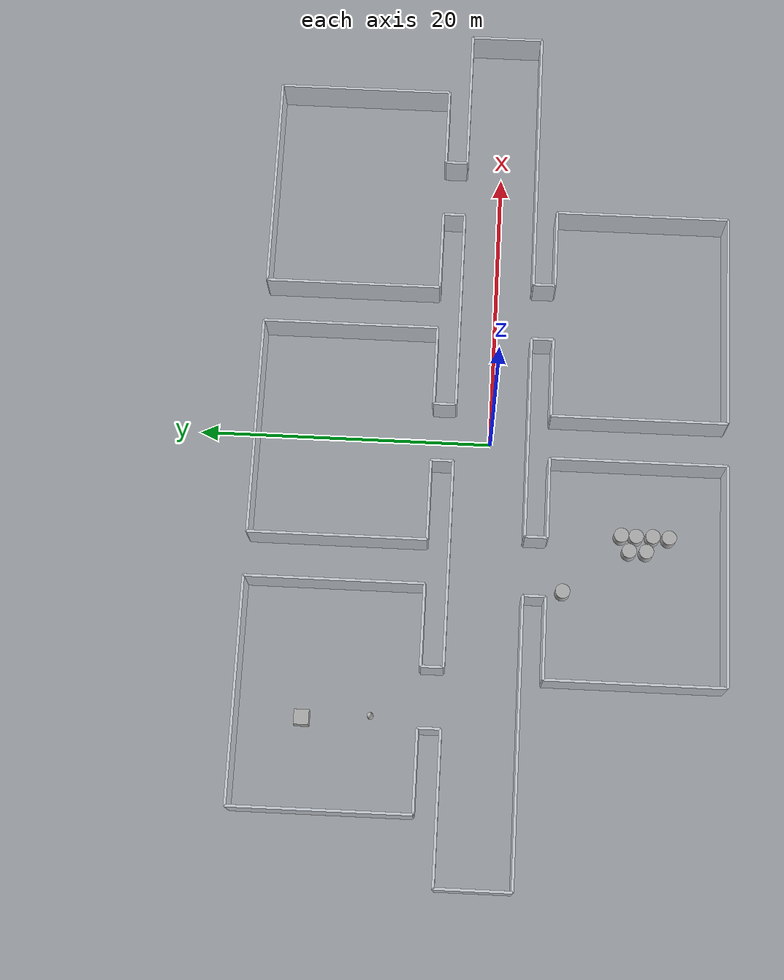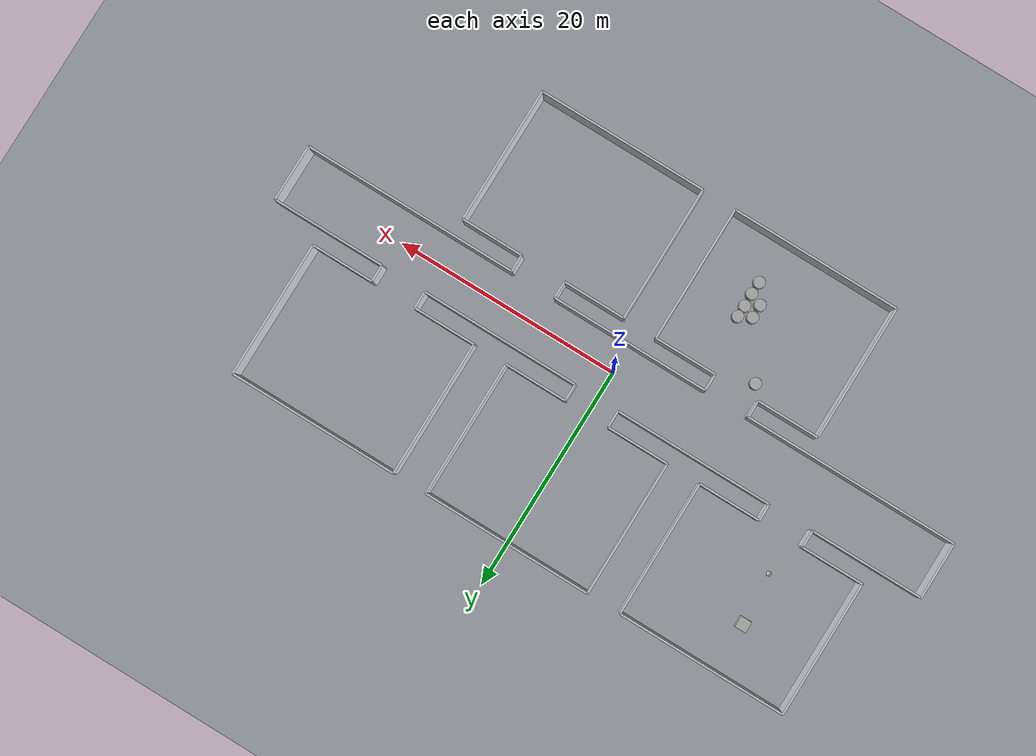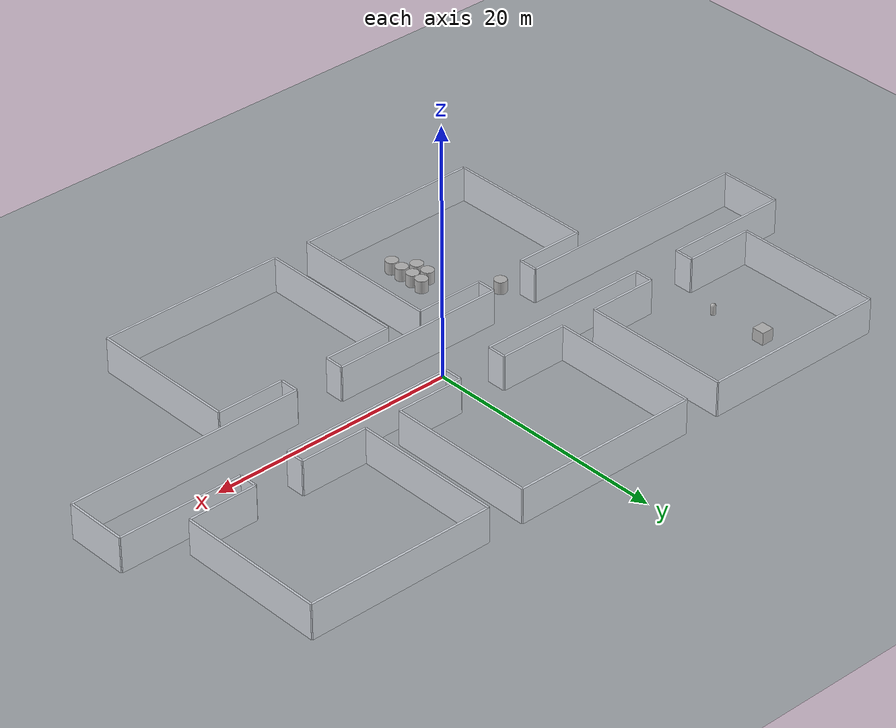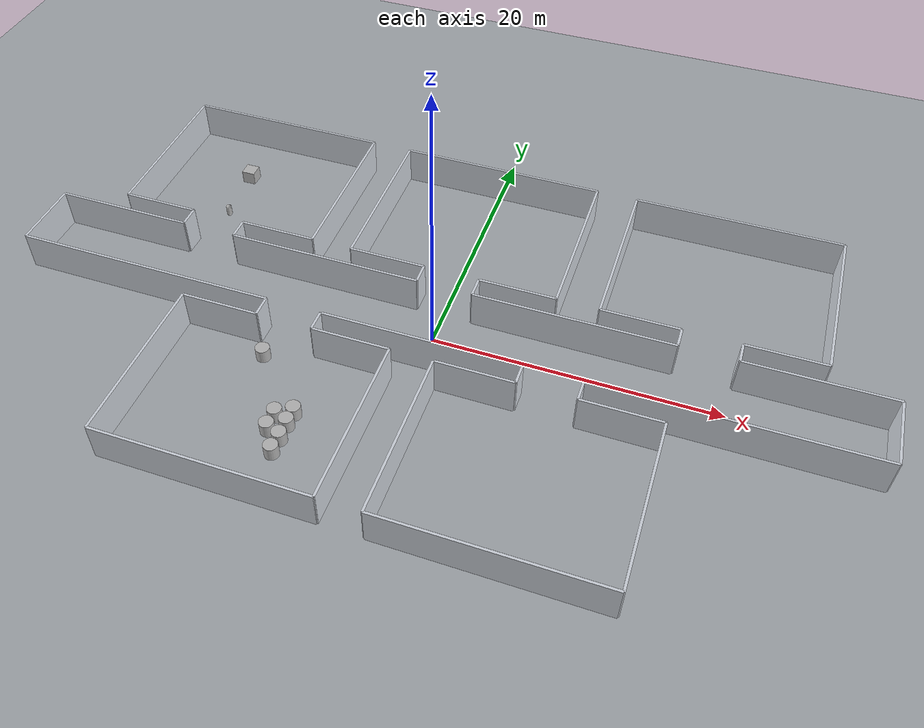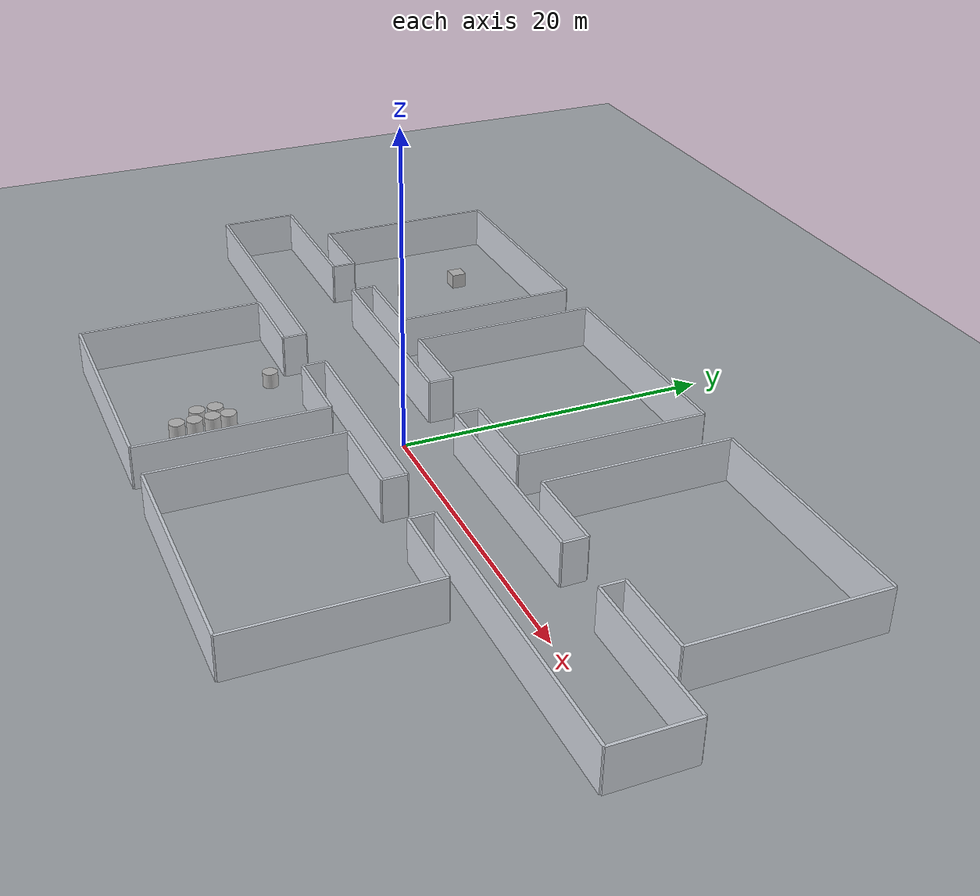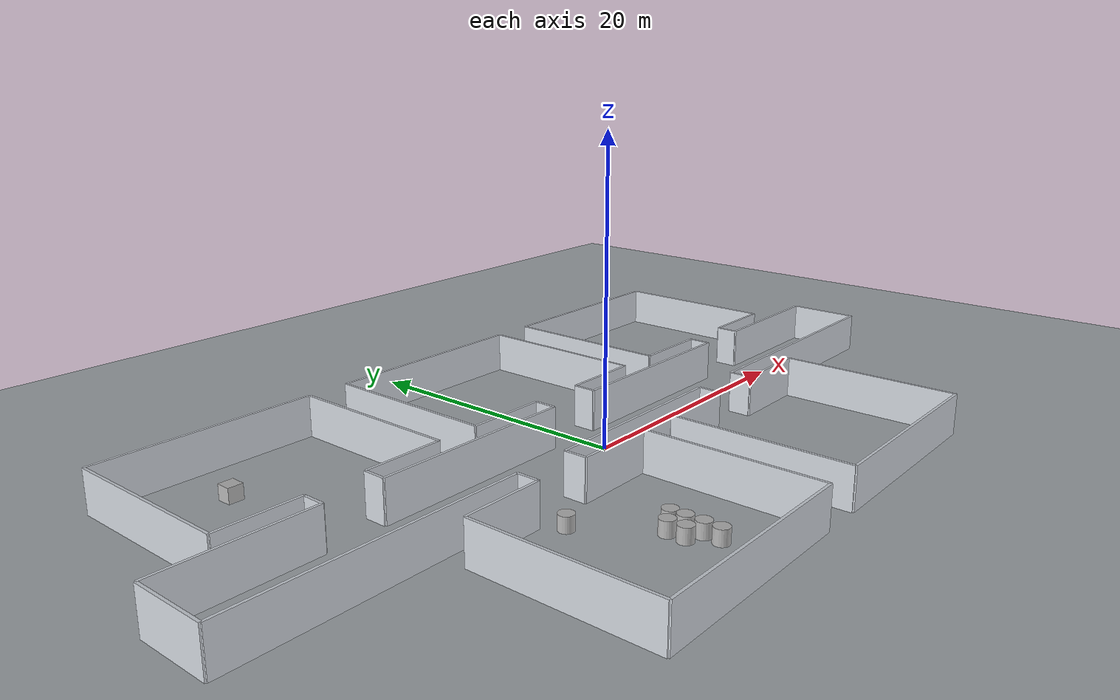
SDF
<sdf version="1.10">
 <world name="warehouse_5_rooms_agv_clearance">
  <model name="ground_plane">
   <static>true</static>
   <link name="link">
    <collision name="collision">
     <geometry><plane><normal>0 0 1</normal><size>100 70</size></plane></geometry>
     <surface><friction><ode><mu>50</mu><mu2>50</mu2></ode></friction></surface>
    </collision>
    <visual name="visual">
     <geometry><plane><normal>0 0 1</normal><size>100 70</size></plane></geometry>
     <material>
      <ambient>0.579999983 0.600000024 0.620000005 1</ambient>
      <diffuse>0.620000005 0.639999986 0.660000026 1</diffuse>
     </material>
    </visual>
    <inertial>
     <mass>1</mass>
     <inertia><ixx>1</ixx><ixy>0</ixy><ixz>0</ixz><iyy>1</iyy><iyz>0</iyz><izz>1</izz></inertia>
    </inertial>
   </link>
  </model>
  <model name="warehouse_structure">
   <static>true</static>
   <link name="walls_link">
    <collision name="corridor_north_1_collision">
     <pose>-25 2.5 1.3999999999999999 0 0 0</pose>
     <geometry><box><size>10 0.17999999999999999 2.7999999999999998</size></box></geometry>
    </collision>
    <visual name="corridor_north_1_visual">
     <pose>-25 2.5 1.3999999999999999 0 0 0</pose>
     <geometry><box><size>10 0.17999999999999999 2.7999999999999998</size></box></geometry>
     <material>
      <ambient>0.800000012 0.819999993 0.850000024 1</ambient>
      <diffuse>0.800000012 0.819999993 0.850000024 1</diffuse>
     </material>
    </visual>
    <collision name="corridor_north_2_collision">
     <pose>-9 2.5 1.3999999999999999 0 0 0</pose>
     <geometry><box><size>14 0.17999999999999999 2.7999999999999998</size></box></geometry>
    </collision>
    <visual name="corridor_north_2_visual">
     <pose>-9 2.5 1.3999999999999999 0 0 0</pose>
     <geometry><box><size>14 0.17999999999999999 2.7999999999999998</size></box></geometry>
     <material>
      <ambient>0.800000012 0.819999993 0.850000024 1</ambient>
      <diffuse>0.800000012 0.819999993 0.850000024 1</diffuse>
     </material>
    </visual>
    <collision name="corridor_north_3_collision">
     <pose>9 2.5 1.3999999999999999 0 0 0</pose>
     <geometry><box><size>14 0.17999999999999999 2.7999999999999998</size></box></geometry>
    </collision>
    <visual name="corridor_north_3_visual">
     <pose>9 2.5 1.3999999999999999 0 0 0</pose>
     <geometry><box><size>14 0.17999999999999999 2.7999999999999998</size></box></geometry>
     <material>
      <ambient>0.800000012 0.819999993 0.850000024 1</ambient>
      <diffuse>0.800000012 0.819999993 0.850000024 1</diffuse>
     </material>
    </visual>
    <collision name="corridor_north_4_collision">
     <pose>25 2.5 1.3999999999999999 0 0 0</pose>
     <geometry><box><size>10 0.17999999999999999 2.7999999999999998</size></box></geometry>
    </collision>
    <visual name="corridor_north_4_visual">
     <pose>25 2.5 1.3999999999999999 0 0 0</pose>
     <geometry><box><size>10 0.17999999999999999 2.7999999999999998</size></box></geometry>
     <material>
      <ambient>0.800000012 0.819999993 0.850000024 1</ambient>
      <diffuse>0.800000012 0.819999993 0.850000024 1</diffuse>
     </material>
    </visual>
    <collision name="corridor_south_1_collision">
     <pose>-20.5 -2.5 1.3999999999999999 0 0 0</pose>
     <geometry><box><size>19 0.17999999999999999 2.7999999999999998</size></box></geometry>
    </collision>
    <visual name="corridor_south_1_visual">
     <pose>-20.5 -2.5 1.3999999999999999 0 0 0</pose>
     <geometry><box><size>19 0.17999999999999999 2.7999999999999998</size></box></geometry>
     <material>
      <ambient>0.800000012 0.819999993 0.850000024 1</ambient>
      <diffuse>0.800000012 0.819999993 0.850000024 1</diffuse>
     </material>
    </visual>
    <collision name="corridor_south_2_collision">
     <pose>0 -2.5 1.3999999999999999 0 0 0</pose>
     <geometry><box><size>14 0.17999999999999999 2.7999999999999998</size></box></geometry>
    </collision>
    <visual name="corridor_south_2_visual">
     <pose>0 -2.5 1.3999999999999999 0 0 0</pose>
     <geometry><box><size>14 0.17999999999999999 2.7999999999999998</size></box></geometry>
     <material>
      <ambient>0.800000012 0.819999993 0.850000024 1</ambient>
      <diffuse>0.800000012 0.819999993 0.850000024 1</diffuse>
     </material>
    </visual>
    <collision name="corridor_south_3_collision">
     <pose>20.5 -2.5 1.3999999999999999 0 0 0</pose>
     <geometry><box><size>19 0.17999999999999999 2.7999999999999998</size></box></geometry>
    </collision>
    <visual name="corridor_south_3_visual">
     <pose>20.5 -2.5 1.3999999999999999 0 0 0</pose>
     <geometry><box><size>19 0.17999999999999999 2.7999999999999998</size></box></geometry>
     <material>
      <ambient>0.800000012 0.819999993 0.850000024 1</ambient>
      <diffuse>0.800000012 0.819999993 0.850000024 1</diffuse>
     </material>
    </visual>
    <collision name="corridor_west_end_collision">
     <pose>-30 0 1.3999999999999999 0 0 0</pose>
     <geometry><box><size>0.17999999999999999 5 2.7999999999999998</size></box></geometry>
    </collision>
    <visual name="corridor_west_end_visual">
     <pose>-30 0 1.3999999999999999 0 0 0</pose>
     <geometry><box><size>0.17999999999999999 5 2.7999999999999998</size></box></geometry>
     <material>
      <ambient>0.800000012 0.819999993 0.850000024 1</ambient>
      <diffuse>0.800000012 0.819999993 0.850000024 1</diffuse>
     </material>
    </visual>
    <collision name="corridor_east_end_collision">
     <pose>30 0 1.3999999999999999 0 0 0</pose>
     <geometry><box><size>0.17999999999999999 5 2.7999999999999998</size></box></geometry>
    </collision>
    <visual name="corridor_east_end_visual">
     <pose>30 0 1.3999999999999999 0 0 0</pose>
     <geometry><box><size>0.17999999999999999 5 2.7999999999999998</size></box></geometry>
     <material>
      <ambient>0.800000012 0.819999993 0.850000024 1</ambient>
      <diffuse>0.800000012 0.819999993 0.850000024 1</diffuse>
     </material>
    </visual>
    <collision name="room_1_west_collision">
     <pose>-25.5 10 1.3999999999999999 0 0 0</pose>
     <geometry><box><size>0.17999999999999999 12 2.7999999999999998</size></box></geometry>
    </collision>
    <visual name="room_1_west_visual">
     <pose>-25.5 10 1.3999999999999999 0 0 0</pose>
     <geometry><box><size>0.17999999999999999 12 2.7999999999999998</size></box></geometry>
     <material>
      <ambient>0.800000012 0.819999993 0.850000024 1</ambient>
      <diffuse>0.800000012 0.819999993 0.850000024 1</diffuse>
     </material>
    </visual>
    <collision name="room_1_east_collision">
     <pose>-10.5 10 1.3999999999999999 0 0 0</pose>
     <geometry><box><size>0.17999999999999999 12 2.7999999999999998</size></box></geometry>
    </collision>
    <visual name="room_1_east_visual">
     <pose>-10.5 10 1.3999999999999999 0 0 0</pose>
     <geometry><box><size>0.17999999999999999 12 2.7999999999999998</size></box></geometry>
     <material>
      <ambient>0.800000012 0.819999993 0.850000024 1</ambient>
      <diffuse>0.800000012 0.819999993 0.850000024 1</diffuse>
     </material>
    </visual>
    <collision name="room_1_north_collision">
     <pose>-18 16 1.3999999999999999 0 0 0</pose>
     <geometry><box><size>15 0.17999999999999999 2.7999999999999998</size></box></geometry>
    </collision>
    <visual name="room_1_north_visual">
     <pose>-18 16 1.3999999999999999 0 0 0</pose>
     <geometry><box><size>15 0.17999999999999999 2.7999999999999998</size></box></geometry>
     <material>
      <ambient>0.800000012 0.819999993 0.850000024 1</ambient>
      <diffuse>0.800000012 0.819999993 0.850000024 1</diffuse>
     </material>
    </visual>
    <collision name="room_1_front_left_collision">
     <pose>-22.75 4 1.3999999999999999 0 0 0</pose>
     <geometry><box><size>5.5 0.17999999999999999 2.7999999999999998</size></box></geometry>
    </collision>
    <visual name="room_1_front_left_visual">
     <pose>-22.75 4 1.3999999999999999 0 0 0</pose>
     <geometry><box><size>5.5 0.17999999999999999 2.7999999999999998</size></box></geometry>
     <material>
      <ambient>0.800000012 0.819999993 0.850000024 1</ambient>
      <diffuse>0.800000012 0.819999993 0.850000024 1</diffuse>
     </material>
    </visual>
    <collision name="room_1_front_right_collision">
     <pose>-13.25 4 1.3999999999999999 0 0 0</pose>
     <geometry><box><size>5.5 0.17999999999999999 2.7999999999999998</size></box></geometry>
    </collision>
    <visual name="room_1_front_right_visual">
     <pose>-13.25 4 1.3999999999999999 0 0 0</pose>
     <geometry><box><size>5.5 0.17999999999999999 2.7999999999999998</size></box></geometry>
     <material>
      <ambient>0.800000012 0.819999993 0.850000024 1</ambient>
      <diffuse>0.800000012 0.819999993 0.850000024 1</diffuse>
     </material>
    </visual>
    <collision name="room_1_branch_west_collision">
     <pose>-20 3.25 1.3999999999999999 0 0 0</pose>
     <geometry><box><size>0.17999999999999999 1.5 2.7999999999999998</size></box></geometry>
    </collision>
    <visual name="room_1_branch_west_visual">
     <pose>-20 3.25 1.3999999999999999 0 0 0</pose>
     <geometry><box><size>0.17999999999999999 1.5 2.7999999999999998</size></box></geometry>
     <material>
      <ambient>0.800000012 0.819999993 0.850000024 1</ambient>
      <diffuse>0.800000012 0.819999993 0.850000024 1</diffuse>
     </material>
    </visual>
    <collision name="room_1_branch_east_collision">
     <pose>-16 3.25 1.3999999999999999 0 0 0</pose>
     <geometry><box><size>0.17999999999999999 1.5 2.7999999999999998</size></box></geometry>
    </collision>
    <visual name="room_1_branch_east_visual">
     <pose>-16 3.25 1.3999999999999999 0 0 0</pose>
     <geometry><box><size>0.17999999999999999 1.5 2.7999999999999998</size></box></geometry>
     <material>
      <ambient>0.800000012 0.819999993 0.850000024 1</ambient>
      <diffuse>0.800000012 0.819999993 0.850000024 1</diffuse>
     </material>
    </visual>
    <collision name="room_2_west_collision">
     <pose>-7.5 10 1.3999999999999999 0 0 0</pose>
     <geometry><box><size>0.17999999999999999 12 2.7999999999999998</size></box></geometry>
    </collision>
    <visual name="room_2_west_visual">
     <pose>-7.5 10 1.3999999999999999 0 0 0</pose>
     <geometry><box><size>0.17999999999999999 12 2.7999999999999998</size></box></geometry>
     <material>
      <ambient>0.800000012 0.819999993 0.850000024 1</ambient>
      <diffuse>0.800000012 0.819999993 0.850000024 1</diffuse>
     </material>
    </visual>
    <collision name="room_2_east_collision">
     <pose>7.5 10 1.3999999999999999 0 0 0</pose>
     <geometry><box><size>0.17999999999999999 12 2.7999999999999998</size></box></geometry>
    </collision>
    <visual name="room_2_east_visual">
     <pose>7.5 10 1.3999999999999999 0 0 0</pose>
     <geometry><box><size>0.17999999999999999 12 2.7999999999999998</size></box></geometry>
     <material>
      <ambient>0.800000012 0.819999993 0.850000024 1</ambient>
      <diffuse>0.800000012 0.819999993 0.850000024 1</diffuse>
     </material>
    </visual>
    <collision name="room_2_north_collision">
     <pose>0 16 1.3999999999999999 0 0 0</pose>
     <geometry><box><size>15 0.17999999999999999 2.7999999999999998</size></box></geometry>
    </collision>
    <visual name="room_2_north_visual">
     <pose>0 16 1.3999999999999999 0 0 0</pose>
     <geometry><box><size>15 0.17999999999999999 2.7999999999999998</size></box></geometry>
     <material>
      <ambient>0.800000012 0.819999993 0.850000024 1</ambient>
      <diffuse>0.800000012 0.819999993 0.850000024 1</diffuse>
     </material>
    </visual>
    <collision name="room_2_front_left_collision">
     <pose>-4.75 4 1.3999999999999999 0 0 0</pose>
     <geometry><box><size>5.5 0.17999999999999999 2.7999999999999998</size></box></geometry>
    </collision>
    <visual name="room_2_front_left_visual">
     <pose>-4.75 4 1.3999999999999999 0 0 0</pose>
     <geometry><box><size>5.5 0.17999999999999999 2.7999999999999998</size></box></geometry>
     <material>
      <ambient>0.800000012 0.819999993 0.850000024 1</ambient>
      <diffuse>0.800000012 0.819999993 0.850000024 1</diffuse>
     </material>
    </visual>
    <collision name="room_2_front_right_collision">
     <pose>4.75 4 1.3999999999999999 0 0 0</pose>
     <geometry><box><size>5.5 0.17999999999999999 2.7999999999999998</size></box></geometry>
    </collision>
    <visual name="room_2_front_right_visual">
     <pose>4.75 4 1.3999999999999999 0 0 0</pose>
     <geometry><box><size>5.5 0.17999999999999999 2.7999999999999998</size></box></geometry>
     <material>
      <ambient>0.800000012 0.819999993 0.850000024 1</ambient>
      <diffuse>0.800000012 0.819999993 0.850000024 1</diffuse>
     </material>
    </visual>
    <collision name="room_2_branch_west_collision">
     <pose>-2 3.25 1.3999999999999999 0 0 0</pose>
     <geometry><box><size>0.17999999999999999 1.5 2.7999999999999998</size></box></geometry>
    </collision>
    <visual name="room_2_branch_west_visual">
     <pose>-2 3.25 1.3999999999999999 0 0 0</pose>
     <geometry><box><size>0.17999999999999999 1.5 2.7999999999999998</size></box></geometry>
     <material>
      <ambient>0.800000012 0.819999993 0.850000024 1</ambient>
      <diffuse>0.800000012 0.819999993 0.850000024 1</diffuse>
     </material>
    </visual>
    <collision name="room_2_branch_east_collision">
     <pose>2 3.25 1.3999999999999999 0 0 0</pose>
     <geometry><box><size>0.17999999999999999 1.5 2.7999999999999998</size></box></geometry>
    </collision>
    <visual name="room_2_branch_east_visual">
     <pose>2 3.25 1.3999999999999999 0 0 0</pose>
     <geometry><box><size>0.17999999999999999 1.5 2.7999999999999998</size></box></geometry>
     <material>
      <ambient>0.800000012 0.819999993 0.850000024 1</ambient>
      <diffuse>0.800000012 0.819999993 0.850000024 1</diffuse>
     </material>
    </visual>
    <collision name="room_3_west_collision">
     <pose>10.5 10 1.3999999999999999 0 0 0</pose>
     <geometry><box><size>0.17999999999999999 12 2.7999999999999998</size></box></geometry>
    </collision>
    <visual name="room_3_west_visual">
     <pose>10.5 10 1.3999999999999999 0 0 0</pose>
     <geometry><box><size>0.17999999999999999 12 2.7999999999999998</size></box></geometry>
     <material>
      <ambient>0.800000012 0.819999993 0.850000024 1</ambient>
      <diffuse>0.800000012 0.819999993 0.850000024 1</diffuse>
     </material>
    </visual>
    <collision name="room_3_east_collision">
     <pose>25.5 10 1.3999999999999999 0 0 0</pose>
     <geometry><box><size>0.17999999999999999 12 2.7999999999999998</size></box></geometry>
    </collision>
    <visual name="room_3_east_visual">
     <pose>25.5 10 1.3999999999999999 0 0 0</pose>
     <geometry><box><size>0.17999999999999999 12 2.7999999999999998</size></box></geometry>
     <material>
      <ambient>0.800000012 0.819999993 0.850000024 1</ambient>
      <diffuse>0.800000012 0.819999993 0.850000024 1</diffuse>
     </material>
    </visual>
    <collision name="room_3_north_collision">
     <pose>18 16 1.3999999999999999 0 0 0</pose>
     <geometry><box><size>15 0.17999999999999999 2.7999999999999998</size></box></geometry>
    </collision>
    <visual name="room_3_north_visual">
     <pose>18 16 1.3999999999999999 0 0 0</pose>
     <geometry><box><size>15 0.17999999999999999 2.7999999999999998</size></box></geometry>
     <material>
      <ambient>0.800000012 0.819999993 0.850000024 1</ambient>
      <diffuse>0.800000012 0.819999993 0.850000024 1</diffuse>
     </material>
    </visual>
    <collision name="room_3_front_left_collision">
     <pose>13.25 4 1.3999999999999999 0 0 0</pose>
     <geometry><box><size>5.5 0.17999999999999999 2.7999999999999998</size></box></geometry>
    </collision>
    <visual name="room_3_front_left_visual">
     <pose>13.25 4 1.3999999999999999 0 0 0</pose>
     <geometry><box><size>5.5 0.17999999999999999 2.7999999999999998</size></box></geometry>
     <material>
      <ambient>0.800000012 0.819999993 0.850000024 1</ambient>
      <diffuse>0.800000012 0.819999993 0.850000024 1</diffuse>
     </material>
    </visual>
    <collision name="room_3_front_right_collision">
     <pose>22.75 4 1.3999999999999999 0 0 0</pose>
     <geometry><box><size>5.5 0.17999999999999999 2.7999999999999998</size></box></geometry>
    </collision>
    <visual name="room_3_front_right_visual">
     <pose>22.75 4 1.3999999999999999 0 0 0</pose>
     <geometry><box><size>5.5 0.17999999999999999 2.7999999999999998</size></box></geometry>
     <material>
      <ambient>0.800000012 0.819999993 0.850000024 1</ambient>
      <diffuse>0.800000012 0.819999993 0.850000024 1</diffuse>
     </material>
    </visual>
    <collision name="room_3_branch_west_collision">
     <pose>16 3.25 1.3999999999999999 0 0 0</pose>
     <geometry><box><size>0.17999999999999999 1.5 2.7999999999999998</size></box></geometry>
    </collision>
    <visual name="room_3_branch_west_visual">
     <pose>16 3.25 1.3999999999999999 0 0 0</pose>
     <geometry><box><size>0.17999999999999999 1.5 2.7999999999999998</size></box></geometry>
     <material>
      <ambient>0.800000012 0.819999993 0.850000024 1</ambient>
      <diffuse>0.800000012 0.819999993 0.850000024 1</diffuse>
     </material>
    </visual>
    <collision name="room_3_branch_east_collision">
     <pose>20 3.25 1.3999999999999999 0 0 0</pose>
     <geometry><box><size>0.17999999999999999 1.5 2.7999999999999998</size></box></geometry>
    </collision>
    <visual name="room_3_branch_east_visual">
     <pose>20 3.25 1.3999999999999999 0 0 0</pose>
     <geometry><box><size>0.17999999999999999 1.5 2.7999999999999998</size></box></geometry>
     <material>
      <ambient>0.800000012 0.819999993 0.850000024 1</ambient>
      <diffuse>0.800000012 0.819999993 0.850000024 1</diffuse>
     </material>
    </visual>
    <collision name="room_4_west_collision">
     <pose>-16.5 -10 1.3999999999999999 0 0 0</pose>
     <geometry><box><size>0.17999999999999999 12 2.7999999999999998</size></box></geometry>
    </collision>
    <visual name="room_4_west_visual">
     <pose>-16.5 -10 1.3999999999999999 0 0 0</pose>
     <geometry><box><size>0.17999999999999999 12 2.7999999999999998</size></box></geometry>
     <material>
      <ambient>0.800000012 0.819999993 0.850000024 1</ambient>
      <diffuse>0.800000012 0.819999993 0.850000024 1</diffuse>
     </material>
    </visual>
    <collision name="room_4_east_collision">
     <pose>-1.5 -10 1.3999999999999999 0 0 0</pose>
     <geometry><box><size>0.17999999999999999 12 2.7999999999999998</size></box></geometry>
    </collision>
    <visual name="room_4_east_visual">
     <pose>-1.5 -10 1.3999999999999999 0 0 0</pose>
     <geometry><box><size>0.17999999999999999 12 2.7999999999999998</size></box></geometry>
     <material>
      <ambient>0.800000012 0.819999993 0.850000024 1</ambient>
      <diffuse>0.800000012 0.819999993 0.850000024 1</diffuse>
     </material>
    </visual>
    <collision name="room_4_south_collision">
     <pose>-9 -16 1.3999999999999999 0 0 0</pose>
     <geometry><box><size>15 0.17999999999999999 2.7999999999999998</size></box></geometry>
    </collision>
    <visual name="room_4_south_visual">
     <pose>-9 -16 1.3999999999999999 0 0 0</pose>
     <geometry><box><size>15 0.17999999999999999 2.7999999999999998</size></box></geometry>
     <material>
      <ambient>0.800000012 0.819999993 0.850000024 1</ambient>
      <diffuse>0.800000012 0.819999993 0.850000024 1</diffuse>
     </material>
    </visual>
    <collision name="room_4_front_left_collision">
     <pose>-13.75 -4 1.3999999999999999 0 0 0</pose>
     <geometry><box><size>5.5 0.17999999999999999 2.7999999999999998</size></box></geometry>
    </collision>
    <visual name="room_4_front_left_visual">
     <pose>-13.75 -4 1.3999999999999999 0 0 0</pose>
     <geometry><box><size>5.5 0.17999999999999999 2.7999999999999998</size></box></geometry>
     <material>
      <ambient>0.800000012 0.819999993 0.850000024 1</ambient>
      <diffuse>0.800000012 0.819999993 0.850000024 1</diffuse>
     </material>
    </visual>
    <collision name="room_4_front_right_collision">
     <pose>-4.25 -4 1.3999999999999999 0 0 0</pose>
     <geometry><box><size>5.5 0.17999999999999999 2.7999999999999998</size></box></geometry>
    </collision>
    <visual name="room_4_front_right_visual">
     <pose>-4.25 -4 1.3999999999999999 0 0 0</pose>
     <geometry><box><size>5.5 0.17999999999999999 2.7999999999999998</size></box></geometry>
     <material>
      <ambient>0.800000012 0.819999993 0.850000024 1</ambient>
      <diffuse>0.800000012 0.819999993 0.850000024 1</diffuse>
     </material>
    </visual>
    <collision name="room_4_branch_west_collision">
     <pose>-11 -3.25 1.3999999999999999 0 0 0</pose>
     <geometry><box><size>0.17999999999999999 1.5 2.7999999999999998</size></box></geometry>
    </collision>
    <visual name="room_4_branch_west_visual">
     <pose>-11 -3.25 1.3999999999999999 0 0 0</pose>
     <geometry><box><size>0.17999999999999999 1.5 2.7999999999999998</size></box></geometry>
     <material>
      <ambient>0.800000012 0.819999993 0.850000024 1</ambient>
      <diffuse>0.800000012 0.819999993 0.850000024 1</diffuse>
     </material>
    </visual>
    <collision name="room_4_branch_east_collision">
     <pose>-7 -3.25 1.3999999999999999 0 0 0</pose>
     <geometry><box><size>0.17999999999999999 1.5 2.7999999999999998</size></box></geometry>
    </collision>
    <visual name="room_4_branch_east_visual">
     <pose>-7 -3.25 1.3999999999999999 0 0 0</pose>
     <geometry><box><size>0.17999999999999999 1.5 2.7999999999999998</size></box></geometry>
     <material>
      <ambient>0.800000012 0.819999993 0.850000024 1</ambient>
      <diffuse>0.800000012 0.819999993 0.850000024 1</diffuse>
     </material>
    </visual>
    <collision name="room_5_west_collision">
     <pose>1.5 -10 1.3999999999999999 0 0 0</pose>
     <geometry><box><size>0.17999999999999999 12 2.7999999999999998</size></box></geometry>
    </collision>
    <visual name="room_5_west_visual">
     <pose>1.5 -10 1.3999999999999999 0 0 0</pose>
     <geometry><box><size>0.17999999999999999 12 2.7999999999999998</size></box></geometry>
     <material>
      <ambient>0.800000012 0.819999993 0.850000024 1</ambient>
      <diffuse>0.800000012 0.819999993 0.850000024 1</diffuse>
     </material>
    </visual>
    <collision name="room_5_east_collision">
     <pose>16.5 -10 1.3999999999999999 0 0 0</pose>
     <geometry><box><size>0.17999999999999999 12 2.7999999999999998</size></box></geometry>
    </collision>
    <visual name="room_5_east_visual">
     <pose>16.5 -10 1.3999999999999999 0 0 0</pose>
     <geometry><box><size>0.17999999999999999 12 2.7999999999999998</size></box></geometry>
     <material>
      <ambient>0.800000012 0.819999993 0.850000024 1</ambient>
      <diffuse>0.800000012 0.819999993 0.850000024 1</diffuse>
     </material>
    </visual>
    <collision name="room_5_south_collision">
     <pose>9 -16 1.3999999999999999 0 0 0</pose>
     <geometry><box><size>15 0.17999999999999999 2.7999999999999998</size></box></geometry>
    </collision>
    <visual name="room_5_south_visual">
     <pose>9 -16 1.3999999999999999 0 0 0</pose>
     <geometry><box><size>15 0.17999999999999999 2.7999999999999998</size></box></geometry>
     <material>
      <ambient>0.800000012 0.819999993 0.850000024 1</ambient>
      <diffuse>0.800000012 0.819999993 0.850000024 1</diffuse>
     </material>
    </visual>
    <collision name="room_5_front_left_collision">
     <pose>4.25 -4 1.3999999999999999 0 0 0</pose>
     <geometry><box><size>5.5 0.17999999999999999 2.7999999999999998</size></box></geometry>
    </collision>
    <visual name="room_5_front_left_visual">
     <pose>4.25 -4 1.3999999999999999 0 0 0</pose>
     <geometry><box><size>5.5 0.17999999999999999 2.7999999999999998</size></box></geometry>
     <material>
      <ambient>0.800000012 0.819999993 0.850000024 1</ambient>
      <diffuse>0.800000012 0.819999993 0.850000024 1</diffuse>
     </material>
    </visual>
    <collision name="room_5_front_right_collision">
     <pose>13.75 -4 1.3999999999999999 0 0 0</pose>
     <geometry><box><size>5.5 0.17999999999999999 2.7999999999999998</size></box></geometry>
    </collision>
    <visual name="room_5_front_right_visual">
     <pose>13.75 -4 1.3999999999999999 0 0 0</pose>
     <geometry><box><size>5.5 0.17999999999999999 2.7999999999999998</size></box></geometry>
     <material>
      <ambient>0.800000012 0.819999993 0.850000024 1</ambient>
      <diffuse>0.800000012 0.819999993 0.850000024 1</diffuse>
     </material>
    </visual>
    <collision name="room_5_branch_west_collision">
     <pose>7 -3.25 1.3999999999999999 0 0 0</pose>
     <geometry><box><size>0.17999999999999999 1.5 2.7999999999999998</size></box></geometry>
    </collision>
    <visual name="room_5_branch_west_visual">
     <pose>7 -3.25 1.3999999999999999 0 0 0</pose>
     <geometry><box><size>0.17999999999999999 1.5 2.7999999999999998</size></box></geometry>
     <material>
      <ambient>0.800000012 0.819999993 0.850000024 1</ambient>
      <diffuse>0.800000012 0.819999993 0.850000024 1</diffuse>
     </material>
    </visual>
    <collision name="room_5_branch_east_collision">
     <pose>11 -3.25 1.3999999999999999 0 0 0</pose>
     <geometry><box><size>0.17999999999999999 1.5 2.7999999999999998</size></box></geometry>
    </collision>
    <visual name="room_5_branch_east_visual">
     <pose>11 -3.25 1.3999999999999999 0 0 0</pose>
     <geometry><box><size>0.17999999999999999 1.5 2.7999999999999998</size></box></geometry>
     <material>
      <ambient>0.800000012 0.819999993 0.850000024 1</ambient>
      <diffuse>0.800000012 0.819999993 0.850000024 1</diffuse>
     </material>
    </visual>
    <inertial>
     <mass>1</mass>
     <inertia><ixx>1</ixx><ixy>0</ixy><ixz>0</ixz><iyy>1</iyy><iyz>0</iyz><izz>1</izz></inertia>
    </inertial>
   </link>
  </model>
  <model name="box_0">
   <pose>-19.402776350195065 11.670155043804026 0.49999999990199806 6.2287739151293738e-22 9.3279666454713669e-22 -3.6315533669320137e-22</pose>
   <link name="box_link">
    <inertial>
     <inertia><ixx>0.16666</ixx><ixy>0</ixy><ixz>0</ixz><iyy>0.16666</iyy><iyz>0</iyz><izz>0.16666</izz></inertia>
     <mass>1</mass>
    </inertial>
    <collision name="box_collision"><geometry><box><size>1 1 1</size></box></geometry></collision>
    <visual name="box_visual">
     <geometry><box><size>1 1 1</size></box></geometry>
     <material>
      <ambient>0.300000012 0.300000012 0.300000012 1</ambient>
      <diffuse>0.699999988 0.699999988 0.699999988 1</diffuse>
      <specular>1 1 1 1</specular>
     </material>
    </visual>
   </link>
   <static>false</static>
  </model>
  <model name="capsule">
   <pose>-19.067548637933889 7.1697574634840819 0.499999999902001 0 0 0</pose>
   <link name="capsule_link">
    <inertial>
     <inertia>
      <ixx>0.074153999999999998</ixx>
      <ixy>0</ixy>
      <ixz>0</ixz>
      <iyy>0.074153999999999998</iyy>
      <iyz>0</iyz>
      <izz>0.018769000000000001</izz>
     </inertia>
     <mass>1</mass>
    </inertial>
    <collision name="capsule_collision">
     <geometry>
      <capsule><radius>0.20000000000000001</radius><length>0.59999999999999998</length></capsule>
     </geometry>
    </collision>
    <visual name="capsule_visual">
     <geometry>
      <capsule><radius>0.20000000000000001</radius><length>0.59999999999999998</length></capsule>
     </geometry>
     <material>
      <ambient>0.300000012 0.300000012 0.300000012 1</ambient>
      <diffuse>0.699999988 0.699999988 0.699999988 1</diffuse>
      <specular>1 1 1 1</specular>
     </material>
    </visual>
   </link>
   <static>false</static>
  </model>
  <model name="cylinder_0">
   <pose>-10.192846479375614 -5.2302218669351639 0.49999942638036005 8.0249359624540141e-21 1.3030505440963679e-19 -2.3592078762559231e-21</pose>
   <link name="cylinder_link">
    <inertial>
     <inertia>
      <ixx>0.14580000000000001</ixx>
      <ixy>0</ixy>
      <ixz>0</ixz>
      <iyy>0.14580000000000001</iyy>
      <iyz>0</iyz>
      <izz>0.125</izz>
     </inertia>
     <mass>1</mass>
    </inertial>
    <collision name="cylinder_collision">
     <geometry><cylinder><radius>0.5</radius><length>1</length></cylinder></geometry>
    </collision>
    <visual name="cylinder_visual">
     <geometry><cylinder><radius>0.5</radius><length>1</length></cylinder></geometry>
     <material>
      <ambient>0.300000012 0.300000012 0.300000012 1</ambient>
      <diffuse>0.699999988 0.699999988 0.699999988 1</diffuse>
      <specular>1 1 1 1</specular>
     </material>
    </visual>
   </link>
   <static>false</static>
  </model>
  <model name="cylinder_2">
   <pose>-6.1537673477508719 -9.0952232500414762 0.49999943346924514 -1.3904880394156427e-08 7.4852812471621038e-10 0.00019546264452509509</pose>
   <link name="cylinder_link">
    <inertial>
     <inertia>
      <ixx>0.14580000000000001</ixx>
      <ixy>0</ixy>
      <ixz>0</ixz>
      <iyy>0.14580000000000001</iyy>
      <iyz>0</iyz>
      <izz>0.125</izz>
     </inertia>
     <mass>1</mass>
    </inertial>
    <collision name="cylinder_collision">
     <geometry><cylinder><radius>0.5</radius><length>1</length></cylinder></geometry>
    </collision>
    <visual name="cylinder_visual">
     <geometry><cylinder><radius>0.5</radius><length>1</length></cylinder></geometry>
     <material>
      <ambient>0.300000012 0.300000012 0.300000012 1</ambient>
      <diffuse>0.699999988 0.699999988 0.699999988 1</diffuse>
      <specular>1 1 1 1</specular>
     </material>
    </visual>
   </link>
   <static>false</static>
  </model>
  <model name="cylinder_3">
   <pose>-6.1887621504833037 -10.094610863607924 0.49999944620534709 -4.2624049058749084e-08 5.8360485649923937e-09 0.00014434856303499163</pose>
   <link name="cylinder_link">
    <inertial>
     <inertia>
      <ixx>0.14580000000000001</ixx>
      <ixy>0</ixy>
      <ixz>0</ixz>
      <iyy>0.14580000000000001</iyy>
      <iyz>0</iyz>
      <izz>0.125</izz>
     </inertia>
     <mass>1</mass>
    </inertial>
    <collision name="cylinder_collision">
     <geometry><cylinder><radius>0.5</radius><length>1</length></cylinder></geometry>
    </collision>
    <visual name="cylinder_visual">
     <geometry><cylinder><radius>0.5</radius><length>1</length></cylinder></geometry>
     <material>
      <ambient>0.300000012 0.300000012 0.300000012 1</ambient>
      <diffuse>0.699999988 0.699999988 0.699999988 1</diffuse>
      <specular>1 1 1 1</specular>
     </material>
    </visual>
   </link>
   <static>false</static>
  </model>
  <model name="cylinder_4">
   <pose>-7.2199311657819258 -9.6477948416431243 0.49999942638036005 7.8876938903450476e-20 -3.1659941630981175e-20 2.2195920974582779e-20</pose>
   <link name="cylinder_link">
    <inertial>
     <inertia>
      <ixx>0.14580000000000001</ixx>
      <ixy>0</ixy>
      <ixz>0</ixz>
      <iyy>0.14580000000000001</iyy>
      <iyz>0</iyz>
      <izz>0.125</izz>
     </inertia>
     <mass>1</mass>
    </inertial>
    <collision name="cylinder_collision">
     <geometry><cylinder><radius>0.5</radius><length>1</length></cylinder></geometry>
    </collision>
    <visual name="cylinder_visual">
     <geometry><cylinder><radius>0.5</radius><length>1</length></cylinder></geometry>
     <material>
      <ambient>0.300000012 0.300000012 0.300000012 1</ambient>
      <diffuse>0.699999988 0.699999988 0.699999988 1</diffuse>
      <specular>1 1 1 1</specular>
     </material>
    </visual>
   </link>
   <static>false</static>
  </model>
  <model name="cylinder_5">
   <pose>-6.1622414651470621 -11.228129754509645 0.49999942638036005 3.1764404354895668e-19 1.7737657189210694e-19 -4.9103326113501619e-21</pose>
   <link name="cylinder_link">
    <inertial>
     <inertia>
      <ixx>0.14580000000000001</ixx>
      <ixy>0</ixy>
      <ixz>0</ixz>
      <iyy>0.14580000000000001</iyy>
      <iyz>0</iyz>
      <izz>0.125</izz>
     </inertia>
     <mass>1</mass>
    </inertial>
    <collision name="cylinder_collision">
     <geometry><cylinder><radius>0.5</radius><length>1</length></cylinder></geometry>
    </collision>
    <visual name="cylinder_visual">
     <geometry><cylinder><radius>0.5</radius><length>1</length></cylinder></geometry>
     <material>
      <ambient>0.300000012 0.300000012 0.300000012 1</ambient>
      <diffuse>0.699999988 0.699999988 0.699999988 1</diffuse>
      <specular>1 1 1 1</specular>
     </material>
    </visual>
   </link>
   <static>false</static>
  </model>
  <model name="cylinder_6">
   <pose>-7.2175711364825172 -10.801324064705765 0.49999942638036005 5.0955535774035384e-19 4.3056557755190265e-20 3.3084788760122615e-20</pose>
   <link name="cylinder_link">
    <inertial>
     <inertia>
      <ixx>0.14580000000000001</ixx>
      <ixy>0</ixy>
      <ixz>0</ixz>
      <iyy>0.14580000000000001</iyy>
      <iyz>0</iyz>
      <izz>0.125</izz>
     </inertia>
     <mass>1</mass>
    </inertial>
    <collision name="cylinder_collision">
     <geometry><cylinder><radius>0.5</radius><length>1</length></cylinder></geometry>
    </collision>
    <visual name="cylinder_visual">
     <geometry><cylinder><radius>0.5</radius><length>1</length></cylinder></geometry>
     <material>
      <ambient>0.300000012 0.300000012 0.300000012 1</ambient>
      <diffuse>0.699999988 0.699999988 0.699999988 1</diffuse>
      <specular>1 1 1 1</specular>
     </material>
    </visual>
   </link>
   <static>false</static>
  </model>
  <model name="cylinder_7">
   <pose>-6.1959976928263671 -12.326503936893653 0.49999942638036005 -1.3003624114752127e-19 1.1025453547793067e-19 4.5498023308540202e-20</pose>
   <link name="cylinder_link">
    <inertial>
     <inertia>
      <ixx>0.14580000000000001</ixx>
      <ixy>0</ixy>
      <ixz>0</ixz>
      <iyy>0.14580000000000001</iyy>
      <iyz>0</iyz>
      <izz>0.125</izz>
     </inertia>
     <mass>1</mass>
    </inertial>
    <collision name="cylinder_collision">
     <geometry><cylinder><radius>0.5</radius><length>1</length></cylinder></geometry>
    </collision>
    <visual name="cylinder_visual">
     <geometry><cylinder><radius>0.5</radius><length>1</length></cylinder></geometry>
     <material>
      <ambient>0.300000012 0.300000012 0.300000012 1</ambient>
      <diffuse>0.699999988 0.699999988 0.699999988 1</diffuse>
      <specular>1 1 1 1</specular>
     </material>
    </visual>
   </link>
   <static>false</static>
  </model>
 </world>
</sdf>
